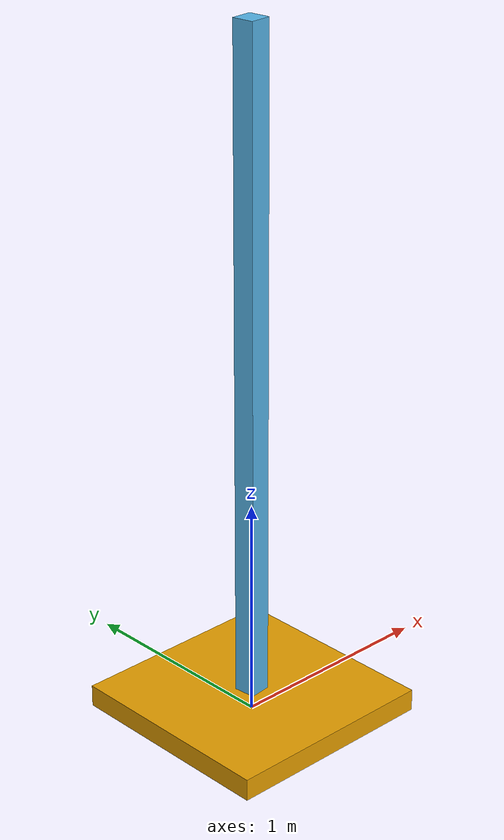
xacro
<?xml version="1.0" ?>

<robot name="mrm" xmlns:xacro="http://www.ros.org/wiki/xacro">

  <link name="base_link">
      <visual>
        <origin rpy="0 0 0" xyz="0 0 0.05" />
        <geometry>
          <box size="1 1 0.1" />
        </geometry>
      </visual>
      <gravity>0</gravity>
    </link>

    <joint name="base_link__link_01" type="revolute">
      <axis xyz="0 1 0" />
      <limit effort="1000.0" lower="-3.14" upper="3.14" velocity="0.5" />
      <origin rpy="0 0 0.1" xyz="0 0 0.1" />
      <parent link="base_link" />
      <child link="link_01" />
    </joint>

    <link name="link_01">
      <visual>
        <origin rpy="0 0 0" xyz="0 0 1.5" />
        <geometry>
          <box size="0.1 0.1 3" />
        </geometry>
      </visual>
      <gravity>0</gravity>
    </link>

</robot>
